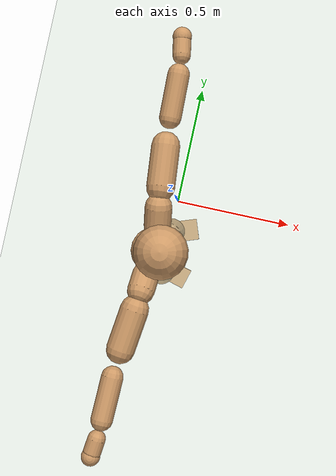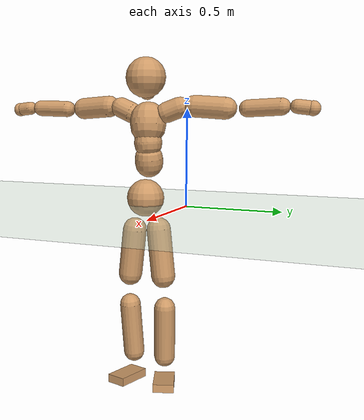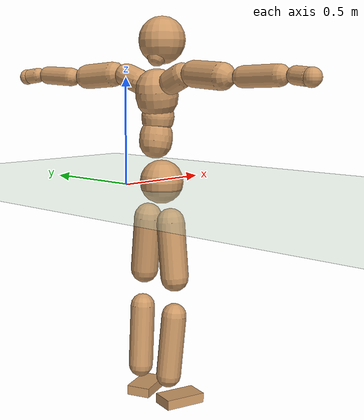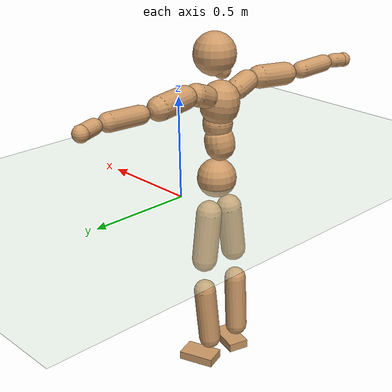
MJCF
<mujoco model="humanoid">
  <compiler coordinate="local"/>
  <default>
    <joint damping="0.0" armature="0.01" stiffness="0.0" limited="true"/>
    <geom conaffinity="1" condim="3" contype="7" margin="0.001" rgba="0.8 0.6 .4 1"/>
  </default>
  <asset>
    <texture type="skybox" builtin="gradient" rgb1=".4 .5 .6" rgb2="0 0 0" width="100" height="100"/>
    <texture builtin="flat" height="1278" mark="cross" markrgb="1 1 1" name="texgeom" random="0.01" rgb1="0.8 0.6 0.4" rgb2="0.8 0.6 0.4" type="cube" width="127"/>
    <texture builtin="checker" height="100" name="texplane" rgb1="0 0 0" rgb2="0.8 0.8 0.8" type="2d" width="100"/>
    <material name="MatPlane" reflectance="0.5" shininess="1" specular="1" texrepeat="60 60" texture="texplane"/>
    <material name="geom" texture="texgeom" texuniform="true"/>
  </asset>
  <worldbody>
    <light cutoff="100" diffuse="1 1 1" dir="-0 0 -1.3" directional="true" exponent="1" pos="0 0 1.3" specular=".1 .1 .1"/>
    <geom conaffinity="1" condim="3" name="floor" pos="0 0 0" rgba="0.8 0.9 0.8 1" size="100 100 .2" type="plane" material="MatPlane"/>
    <body name="Pelvis" pos="-0.0034 -0.2334 0.0338">
      <freejoint name="Pelvis"/>
      <geom type="sphere" contype="1" conaffinity="1" density="500" size="0.0992" pos="0.0000 0.0000 0.0000" name="Pelvis"/>
      <body name="L_Hip" pos="-0.0176 0.0597 -0.0839">
        <joint name="L_Hip_x" type="hinge" pos="0 0 0" axis="1 0 0" stiffness="800" damping="80" armature="0.02" range="-180.0000 180.0000"/>
        <joint name="L_Hip_y" type="hinge" pos="0 0 0" axis="0 1 0" stiffness="800" damping="80" armature="0.02" range="-180.0000 180.0000"/>
        <joint name="L_Hip_z" type="hinge" pos="0 0 0" axis="0 0 1" stiffness="800" damping="80" armature="0.02" range="-180.0000 180.0000"/>
        <geom type="capsule" contype="1" conaffinity="1" density="500" fromto="0.0020 0.0098 -0.0840 0.0079 0.0391 -0.3360" size="0.0644" name="L_Hip"/>
        <body name="L_Knee" pos="0.0098 0.0489 -0.42">
          <joint name="L_Knee_x" type="hinge" pos="0 0 0" axis="1 0 0" stiffness="800" damping="80" armature="0.02" range="-180.0000 180.0000"/>
          <joint name="L_Knee_y" type="hinge" pos="0 0 0" axis="0 1 0" stiffness="800" damping="80" armature="0.02" range="-180.0000 180.0000"/>
          <joint name="L_Knee_z" type="hinge" pos="0 0 0" axis="0 0 1" stiffness="800" damping="80" armature="0.02" range="-180.0000 180.0000"/>
          <geom type="capsule" contype="1" conaffinity="1" density="500" fromto="-0.0076 -0.0031 -0.0946 -0.0305 -0.0125 -0.3784" size="0.0568" name="L_Knee"/>
          <body name="L_Ankle" pos="-0.0381 -0.0156 -0.473">
            <joint name="L_Ankle_x" type="hinge" pos="0 0 0" axis="1 0 0" stiffness="800" damping="80" armature="0.02" range="-180.0000 180.0000"/>
            <joint name="L_Ankle_y" type="hinge" pos="0 0 0" axis="0 1 0" stiffness="800" damping="80" armature="0.02" range="-180.0000 180.0000"/>
            <joint name="L_Ankle_z" type="hinge" pos="0 0 0" axis="0 0 1" stiffness="800" damping="80" armature="0.02" range="-180.0000 180.0000"/>
            <geom type="box" contype="1" conaffinity="1" density="500" pos="0.0643 0.0230 -0.0327" size="0.0941 0.0557 0.0222" quat="0.9853 0.0000 0.0000 0.1710" name="L_Ankle"/>
            <body name="L_Toe" pos="0.1287 0.046 -0.0654">
              <joint name="L_Toe_x" type="hinge" pos="0 0 0" axis="1 0 0" stiffness="500" damping="50" armature="0.02" range="-180.0000 180.0000"/>
              <joint name="L_Toe_y" type="hinge" pos="0 0 0" axis="0 1 0" stiffness="500" damping="50" armature="0.02" range="-180.0000 180.0000"/>
              <joint name="L_Toe_z" type="hinge" pos="0 0 0" axis="0 0 1" stiffness="500" damping="50" armature="0.02" range="-180.0000 180.0000"/>
              <geom type="box" contype="1" conaffinity="1" density="500" pos="0.0000 0.0000 0.0323" size="0.0011 0.0027 0.0011" quat="0.9845 0.0000 0.0000 0.1753" name="L_Toe"/>
            </body>
          </body>
        </body>
      </body>
      <body name="R_Hip" pos="-0.0131 -0.0608 -0.0926">
        <joint name="R_Hip_x" type="hinge" pos="0 0 0" axis="1 0 0" stiffness="800" damping="80" armature="0.02" range="-180.0000 180.0000"/>
        <joint name="R_Hip_y" type="hinge" pos="0 0 0" axis="0 1 0" stiffness="800" damping="80" armature="0.02" range="-180.0000 180.0000"/>
        <joint name="R_Hip_z" type="hinge" pos="0 0 0" axis="0 0 1" stiffness="800" damping="80" armature="0.02" range="-180.0000 180.0000"/>
        <geom type="capsule" contype="1" conaffinity="1" density="500" fromto="-0.0011 -0.0097 -0.0833 -0.0043 -0.0389 -0.3331" size="0.0636" name="R_Hip"/>
        <body name="R_Knee" pos="-0.0054 -0.0486 -0.4163">
          <joint name="R_Knee_x" type="hinge" pos="0 0 0" axis="1 0 0" stiffness="800" damping="80" armature="0.02" range="-180.0000 180.0000"/>
          <joint name="R_Knee_y" type="hinge" pos="0 0 0" axis="0 1 0" stiffness="800" damping="80" armature="0.02" range="-180.0000 180.0000"/>
          <joint name="R_Knee_z" type="hinge" pos="0 0 0" axis="0 0 1" stiffness="800" damping="80" armature="0.02" range="-180.0000 180.0000"/>
          <geom type="capsule" contype="1" conaffinity="1" density="500" fromto="-0.0072 0.0040 -0.0930 -0.0286 0.0161 -0.3721" size="0.0569" name="R_Knee"/>
          <body name="R_Ankle" pos="-0.0358 0.0202 -0.4651">
            <joint name="R_Ankle_x" type="hinge" pos="0 0 0" axis="1 0 0" stiffness="800" damping="80" armature="0.02" range="-180.0000 180.0000"/>
            <joint name="R_Ankle_y" type="hinge" pos="0 0 0" axis="0 1 0" stiffness="800" damping="80" armature="0.02" range="-180.0000 180.0000"/>
            <joint name="R_Ankle_z" type="hinge" pos="0 0 0" axis="0 0 1" stiffness="800" damping="80" armature="0.02" range="-180.0000 180.0000"/>
            <geom type="box" contype="1" conaffinity="1" density="500" pos="0.0689 -0.0193 -0.0332" size="0.0964 0.0532 0.0227" quat="0.9907 0.0000 0.0000 -0.1363" name="R_Ankle"/>
            <body name="R_Toe" pos="0.1379 -0.0387 -0.0664">
              <joint name="R_Toe_x" type="hinge" pos="0 0 0" axis="1 0 0" stiffness="500" damping="50" armature="0.02" range="-180.0000 180.0000"/>
              <joint name="R_Toe_y" type="hinge" pos="0 0 0" axis="0 1 0" stiffness="500" damping="50" armature="0.02" range="-180.0000 180.0000"/>
              <joint name="R_Toe_z" type="hinge" pos="0 0 0" axis="0 0 1" stiffness="500" damping="50" armature="0.02" range="-180.0000 180.0000"/>
              <geom type="box" contype="1" conaffinity="1" density="500" pos="0.0000 0.0000 0.0331" size="0.0011 0.0026 0.0011" quat="0.9918 0.0000 0.0000 -0.1278" name="R_Toe"/>
            </body>
          </body>
        </body>
      </body>
      <body name="Torso" pos="-0.0423 0.005 0.1271">
        <joint name="Torso_x" type="hinge" pos="0 0 0" axis="1 0 0" stiffness="1000" damping="100" armature="0.02" range="-180.0000 180.0000"/>
        <joint name="Torso_y" type="hinge" pos="0 0 0" axis="0 1 0" stiffness="1000" damping="100" armature="0.02" range="-180.0000 180.0000"/>
        <joint name="Torso_z" type="hinge" pos="0 0 0" axis="0 0 1" stiffness="1000" damping="100" armature="0.02" range="-180.0000 180.0000"/>
        <geom type="capsule" contype="1" conaffinity="1" density="500" fromto="0.0148 0.0025 0.0816 0.0099 0.0016 0.0544" size="0.0744" name="Torso"/>
        <body name="Spine" pos="0.0247 0.0041 0.136">
          <joint name="Spine_x" type="hinge" pos="0 0 0" axis="1 0 0" stiffness="1000" damping="100" armature="0.02" range="-180.0000 180.0000"/>
          <joint name="Spine_y" type="hinge" pos="0 0 0" axis="0 1 0" stiffness="1000" damping="100" armature="0.02" range="-180.0000 180.0000"/>
          <joint name="Spine_z" type="hinge" pos="0 0 0" axis="0 0 1" stiffness="1000" damping="100" armature="0.02" range="-180.0000 180.0000"/>
          <geom type="capsule" contype="1" conaffinity="1" density="500" fromto="0.0007 -0.0014 0.0334 0.0005 -0.0009 0.0222" size="0.07347" name="Spine"/>
          <body name="Chest" pos="0.0012 -0.0023 0.0556">
            <joint name="Chest_x" type="hinge" pos="0 0 0" axis="1 0 0" stiffness="1000" damping="100" armature="0.02" range="-180.0000 180.0000"/>
            <joint name="Chest_y" type="hinge" pos="0 0 0" axis="0 1 0" stiffness="1000" damping="100" armature="0.02" range="-180.0000 180.0000"/>
            <joint name="Chest_z" type="hinge" pos="0 0 0" axis="0 0 1" stiffness="1000" damping="100" armature="0.02" range="-180.0000 180.0000"/>
            <geom type="capsule" contype="1" conaffinity="1" density="500" fromto="-0.0148 -0.0045 0.0904 -0.0099 -0.0030 0.0603" size="0.095418" name="Chest"/>
            <body name="Neck" pos="-0.0311 -0.0132 0.2176">
              <joint name="Neck_x" type="hinge" pos="0 0 0" axis="1 0 0" stiffness="500" damping="50" armature="0.02" range="-180.0000 180.0000"/>
              <joint name="Neck_y" type="hinge" pos="0 0 0" axis="0 1 0" stiffness="500" damping="50" armature="0.02" range="-180.0000 180.0000"/>
              <joint name="Neck_z" type="hinge" pos="0 0 0" axis="0 0 1" stiffness="500" damping="50" armature="0.02" range="-180.0000 180.0000"/>
              <geom type="capsule" contype="1" conaffinity="1" density="500" fromto="0.0102 0.0021 0.0179 0.0409 0.0086 0.0717" size="0.042501" name="Neck"/>
              <body name="Head" pos="0.0511 0.0107 0.0896">
                <joint name="Head_x" type="hinge" pos="0 0 0" axis="1 0 0" stiffness="500" damping="50" armature="0.02" range="-180.0000 180.0000"/>
                <joint name="Head_y" type="hinge" pos="0 0 0" axis="0 1 0" stiffness="500" damping="50" armature="0.02" range="-180.0000 180.0000"/>
                <joint name="Head_z" type="hinge" pos="0 0 0" axis="0 0 1" stiffness="500" damping="50" armature="0.02" range="-180.0000 180.0000"/>
                <geom type="sphere" contype="1" conaffinity="1" density="500" size="0.1048" pos="0.0000 0.0000 0.0000" name="Head"/>
              </body>
            </body>
            <body name="L_Thorax" pos="-0.019 0.0702 0.1183">
              <joint name="L_Thorax_x" type="hinge" pos="0 0 0" axis="1 0 0" stiffness="500" damping="50" armature="0.02" range="-180.0000 180.0000"/>
              <joint name="L_Thorax_y" type="hinge" pos="0 0 0" axis="0 1 0" stiffness="500" damping="50" armature="0.02" range="-180.0000 180.0000"/>
              <joint name="L_Thorax_z" type="hinge" pos="0 0 0" axis="0 0 1" stiffness="500" damping="50" armature="0.02" range="-180.0000 180.0000"/>
              <geom type="capsule" contype="1" conaffinity="1" density="500" fromto="-0.0034 0.0240 0.0092 -0.0137 0.0961 0.0369" size="0.0542" name="L_Thorax"/>
              <body name="L_Shoulder" pos="-0.0171 0.1201 0.0461">
                <joint name="L_Shoulder_x" type="hinge" pos="0 0 0" axis="1 0 0" stiffness="500" damping="50" armature="0.02" range="-720.0000 720.0000"/>
                <joint name="L_Shoulder_y" type="hinge" pos="0 0 0" axis="0 1 0" stiffness="500" damping="50" armature="0.02" range="-720.0000 720.0000"/>
                <joint name="L_Shoulder_z" type="hinge" pos="0 0 0" axis="0 0 1" stiffness="500" damping="50" armature="0.02" range="-720.0000 720.0000"/>
                <geom type="capsule" contype="1" conaffinity="1" density="500" fromto="-0.0053 0.0541 -0.0037 -0.0212 0.2164 -0.0146" size="0.0568" name="L_Shoulder"/>
                <body name="L_Elbow" pos="-0.0264 0.2705 -0.0183">
                  <joint name="L_Elbow_x" type="hinge" pos="0 0 0" axis="1 0 0" stiffness="500" damping="50" armature="0.02" range="-720.0000 720.0000"/>
                  <joint name="L_Elbow_y" type="hinge" pos="0 0 0" axis="0 1 0" stiffness="500" damping="50" armature="0.02" range="-720.0000 720.0000"/>
                  <joint name="L_Elbow_z" type="hinge" pos="0 0 0" axis="0 0 1" stiffness="500" damping="50" armature="0.02" range="-720.0000 720.0000"/>
                  <geom type="capsule" contype="1" conaffinity="1" density="500" fromto="-0.0014 0.0572 0.0029 -0.0056 0.2287 0.0116" size="0.0435" name="L_Elbow"/>
                  <body name="L_Wrist" pos="-0.007 0.2858 0.0145">
                    <joint name="L_Wrist_x" type="hinge" pos="0 0 0" axis="1 0 0" stiffness="300" damping="30" armature="0.02" range="-180.0000 180.0000"/>
                    <joint name="L_Wrist_y" type="hinge" pos="0 0 0" axis="0 1 0" stiffness="300" damping="30" armature="0.02" range="-180.0000 180.0000"/>
                    <joint name="L_Wrist_z" type="hinge" pos="0 0 0" axis="0 0 1" stiffness="300" damping="30" armature="0.02" range="-180.0000 180.0000"/>
                    <geom type="capsule" contype="1" conaffinity="1" density="500" fromto="-0.0034 0.0185 -0.0023 -0.0135 0.0739 -0.0090" size="0.0359" name="L_Wrist"/>
                    <body name="L_Hand" pos="-0.0169 0.0924 -0.0113">
                      <joint name="L_Hand_x" type="hinge" pos="0 0 0" axis="1 0 0" stiffness="300" damping="30" armature="0.02" range="-180.0000 180.0000"/>
                      <joint name="L_Hand_y" type="hinge" pos="0 0 0" axis="0 1 0" stiffness="300" damping="30" armature="0.02" range="-180.0000 180.0000"/>
                      <joint name="L_Hand_z" type="hinge" pos="0 0 0" axis="0 0 1" stiffness="300" damping="30" armature="0.02" range="-180.0000 180.0000"/>
                      <geom type="sphere" contype="1" conaffinity="1" density="500" size="0.0377" pos="0.0000 0.0000 0.0000" name="L_Hand"/>
                    </body>
                  </body>
                </body>
              </body>
            </body>
            <body name="R_Thorax" pos="-0.024 -0.0796 0.1161">
              <joint name="R_Thorax_x" type="hinge" pos="0 0 0" axis="1 0 0" stiffness="500" damping="50" armature="0.02" range="-180.0000 180.0000"/>
              <joint name="R_Thorax_y" type="hinge" pos="0 0 0" axis="0 1 0" stiffness="500" damping="50" armature="0.02" range="-180.0000 180.0000"/>
              <joint name="R_Thorax_z" type="hinge" pos="0 0 0" axis="0 0 1" stiffness="500" damping="50" armature="0.02" range="-180.0000 180.0000"/>
              <geom type="capsule" contype="1" conaffinity="1" density="500" fromto="-0.0014 -0.0220 0.0096 -0.0055 -0.0880 0.0383" size="0.0542" name="R_Thorax"/>
              <body name="R_Shoulder" pos="-0.0069 -0.11 0.0479">
                <joint name="R_Shoulder_x" type="hinge" pos="0 0 0" axis="1 0 0" stiffness="500" damping="50" armature="0.02" range="-720.0000 720.0000"/>
                <joint name="R_Shoulder_y" type="hinge" pos="0 0 0" axis="0 1 0" stiffness="500" damping="50" armature="0.02" range="-720.0000 720.0000"/>
                <joint name="R_Shoulder_z" type="hinge" pos="0 0 0" axis="0 0 1" stiffness="500" damping="50" armature="0.02" range="-720.0000 720.0000"/>
                <geom type="capsule" contype="1" conaffinity="1" density="500" fromto="-0.0068 -0.0550 -0.0037 -0.0273 -0.2199 -0.0148" size="0.0573" name="R_Shoulder"/>
                <body name="R_Elbow" pos="-0.0341 -0.2749 -0.0185">
                  <joint name="R_Elbow_x" type="hinge" pos="0 0 0" axis="1 0 0" stiffness="500" damping="50" armature="0.02" range="-720.0000 720.0000"/>
                  <joint name="R_Elbow_y" type="hinge" pos="0 0 0" axis="0 1 0" stiffness="500" damping="50" armature="0.02" range="-720.0000 720.0000"/>
                  <joint name="R_Elbow_z" type="hinge" pos="0 0 0" axis="0 0 1" stiffness="500" damping="50" armature="0.02" range="-720.0000 720.0000"/>
                  <geom type="capsule" contype="1" conaffinity="1" density="500" fromto="-0.0013 -0.0577 0.0017 -0.0054 -0.2307 0.0067" size="0.0438" name="R_Elbow"/>
                  <body name="R_Wrist" pos="-0.0067 -0.2884 0.0084">
                    <joint name="R_Wrist_x" type="hinge" pos="0 0 0" axis="1 0 0" stiffness="300" damping="30" armature="0.02" range="-180.0000 180.0000"/>
                    <joint name="R_Wrist_y" type="hinge" pos="0 0 0" axis="0 1 0" stiffness="300" damping="30" armature="0.02" range="-180.0000 180.0000"/>
                    <joint name="R_Wrist_z" type="hinge" pos="0 0 0" axis="0 0 1" stiffness="300" damping="30" armature="0.02" range="-180.0000 180.0000"/>
                    <geom type="capsule" contype="1" conaffinity="1" density="500" fromto="-0.0022 -0.0187 -0.0018 -0.0087 -0.0747 -0.0073" size="0.0362" name="R_Wrist"/>
                    <body name="R_Hand" pos="-0.0109 -0.0934 -0.0091">
                      <joint name="R_Hand_x" type="hinge" pos="0 0 0" axis="1 0 0" stiffness="300" damping="30" armature="0.02" range="-180.0000 180.0000"/>
                      <joint name="R_Hand_y" type="hinge" pos="0 0 0" axis="0 1 0" stiffness="300" damping="30" armature="0.02" range="-180.0000 180.0000"/>
                      <joint name="R_Hand_z" type="hinge" pos="0 0 0" axis="0 0 1" stiffness="300" damping="30" armature="0.02" range="-180.0000 180.0000"/>
                      <geom type="sphere" contype="1" conaffinity="1" density="500" size="0.0379" pos="0.0000 0.0000 0.0000" name="R_Hand"/>
                    </body>
                  </body>
                </body>
              </body>
            </body>
          </body>
        </body>
      </body>
    </body>
  </worldbody>
  <actuator>
    <motor name="L_Hip_x" joint="L_Hip_x" gear="500"/>
    <motor name="L_Hip_y" joint="L_Hip_y" gear="500"/>
    <motor name="L_Hip_z" joint="L_Hip_z" gear="500"/>
    <motor name="L_Knee_x" joint="L_Knee_x" gear="500"/>
    <motor name="L_Knee_y" joint="L_Knee_y" gear="500"/>
    <motor name="L_Knee_z" joint="L_Knee_z" gear="500"/>
    <motor name="L_Ankle_x" joint="L_Ankle_x" gear="500"/>
    <motor name="L_Ankle_y" joint="L_Ankle_y" gear="500"/>
    <motor name="L_Ankle_z" joint="L_Ankle_z" gear="500"/>
    <motor name="L_Toe_x" joint="L_Toe_x" gear="500"/>
    <motor name="L_Toe_y" joint="L_Toe_y" gear="500"/>
    <motor name="L_Toe_z" joint="L_Toe_z" gear="500"/>
    <motor name="R_Hip_x" joint="R_Hip_x" gear="500"/>
    <motor name="R_Hip_y" joint="R_Hip_y" gear="500"/>
    <motor name="R_Hip_z" joint="R_Hip_z" gear="500"/>
    <motor name="R_Knee_x" joint="R_Knee_x" gear="500"/>
    <motor name="R_Knee_y" joint="R_Knee_y" gear="500"/>
    <motor name="R_Knee_z" joint="R_Knee_z" gear="500"/>
    <motor name="R_Ankle_x" joint="R_Ankle_x" gear="500"/>
    <motor name="R_Ankle_y" joint="R_Ankle_y" gear="500"/>
    <motor name="R_Ankle_z" joint="R_Ankle_z" gear="500"/>
    <motor name="R_Toe_x" joint="R_Toe_x" gear="500"/>
    <motor name="R_Toe_y" joint="R_Toe_y" gear="500"/>
    <motor name="R_Toe_z" joint="R_Toe_z" gear="500"/>
    <motor name="Torso_x" joint="Torso_x" gear="500"/>
    <motor name="Torso_y" joint="Torso_y" gear="500"/>
    <motor name="Torso_z" joint="Torso_z" gear="500"/>
    <motor name="Spine_x" joint="Spine_x" gear="500"/>
    <motor name="Spine_y" joint="Spine_y" gear="500"/>
    <motor name="Spine_z" joint="Spine_z" gear="500"/>
    <motor name="Chest_x" joint="Chest_x" gear="500"/>
    <motor name="Chest_y" joint="Chest_y" gear="500"/>
    <motor name="Chest_z" joint="Chest_z" gear="500"/>
    <motor name="Neck_x" joint="Neck_x" gear="500"/>
    <motor name="Neck_y" joint="Neck_y" gear="500"/>
    <motor name="Neck_z" joint="Neck_z" gear="500"/>
    <motor name="Head_x" joint="Head_x" gear="500"/>
    <motor name="Head_y" joint="Head_y" gear="500"/>
    <motor name="Head_z" joint="Head_z" gear="500"/>
    <motor name="L_Thorax_x" joint="L_Thorax_x" gear="500"/>
    <motor name="L_Thorax_y" joint="L_Thorax_y" gear="500"/>
    <motor name="L_Thorax_z" joint="L_Thorax_z" gear="500"/>
    <motor name="L_Shoulder_x" joint="L_Shoulder_x" gear="500"/>
    <motor name="L_Shoulder_y" joint="L_Shoulder_y" gear="500"/>
    <motor name="L_Shoulder_z" joint="L_Shoulder_z" gear="500"/>
    <motor name="L_Elbow_x" joint="L_Elbow_x" gear="500"/>
    <motor name="L_Elbow_y" joint="L_Elbow_y" gear="500"/>
    <motor name="L_Elbow_z" joint="L_Elbow_z" gear="500"/>
    <motor name="L_Wrist_x" joint="L_Wrist_x" gear="500"/>
    <motor name="L_Wrist_y" joint="L_Wrist_y" gear="500"/>
    <motor name="L_Wrist_z" joint="L_Wrist_z" gear="500"/>
    <motor name="L_Hand_x" joint="L_Hand_x" gear="500"/>
    <motor name="L_Hand_y" joint="L_Hand_y" gear="500"/>
    <motor name="L_Hand_z" joint="L_Hand_z" gear="500"/>
    <motor name="R_Thorax_x" joint="R_Thorax_x" gear="500"/>
    <motor name="R_Thorax_y" joint="R_Thorax_y" gear="500"/>
    <motor name="R_Thorax_z" joint="R_Thorax_z" gear="500"/>
    <motor name="R_Shoulder_x" joint="R_Shoulder_x" gear="500"/>
    <motor name="R_Shoulder_y" joint="R_Shoulder_y" gear="500"/>
    <motor name="R_Shoulder_z" joint="R_Shoulder_z" gear="500"/>
    <motor name="R_Elbow_x" joint="R_Elbow_x" gear="500"/>
    <motor name="R_Elbow_y" joint="R_Elbow_y" gear="500"/>
    <motor name="R_Elbow_z" joint="R_Elbow_z" gear="500"/>
    <motor name="R_Wrist_x" joint="R_Wrist_x" gear="500"/>
    <motor name="R_Wrist_y" joint="R_Wrist_y" gear="500"/>
    <motor name="R_Wrist_z" joint="R_Wrist_z" gear="500"/>
    <motor name="R_Hand_x" joint="R_Hand_x" gear="500"/>
    <motor name="R_Hand_y" joint="R_Hand_y" gear="500"/>
    <motor name="R_Hand_z" joint="R_Hand_z" gear="500"/>
  </actuator>
  <contact>
    <exclude body1="Torso" body2="Chest"/>
    <exclude body1="Head" body2="Chest"/>
    <exclude body1="R_Knee" body2="R_Toe"/>
    <exclude body1="R_Knee" body2="L_Ankle"/>
    <exclude body1="R_Knee" body2="L_Toe"/>
    <exclude body1="L_Knee" body2="L_Toe"/>
    <exclude body1="L_Knee" body2="R_Ankle"/>
    <exclude body1="L_Knee" body2="R_Toe"/>
    <exclude body1="L_Shoulder" body2="Chest"/>
    <exclude body1="R_Shoulder" body2="Chest"/>
  </contact>
  <sensor/>
  <size njmax="700" nconmax="700"/>
</mujoco>
